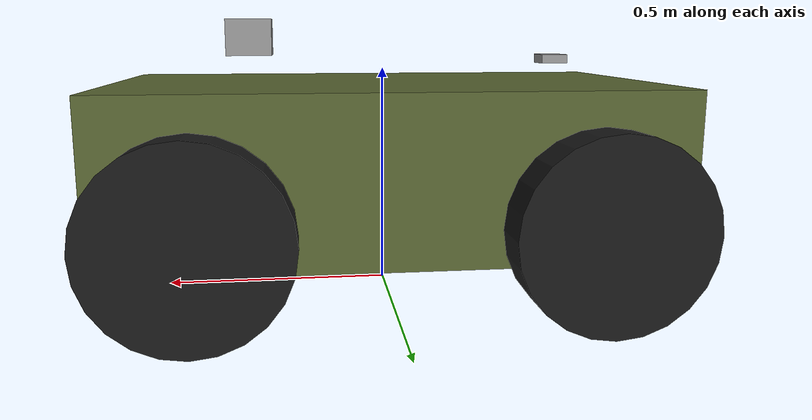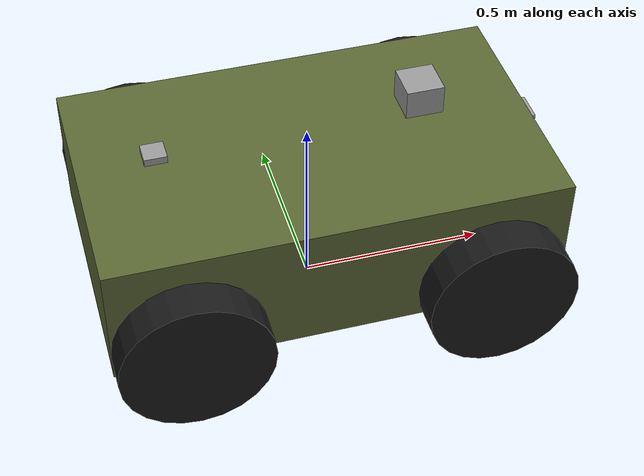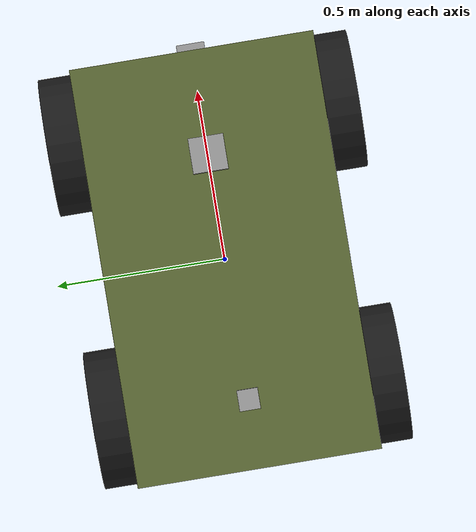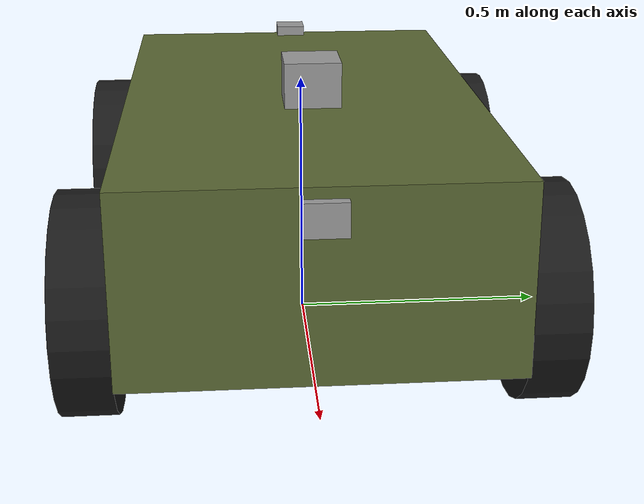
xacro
<?xml version="1.0"?>
<robot xmlns:xacro="http://www.ros.org/wiki/xacro" name="ugv">
  <!-- Differential 4-wheel UGV. Metres, kilograms. Frames follow REP-103 (x forward, z up). -->
  <xacro:arg name="prefix" default=""/>
  <xacro:arg name="use_ros2_control" default="false"/>
  <xacro:arg name="sim" default="false"/>
  <xacro:arg name="ns" default="v1"/>
  <xacro:arg name="controllers_yaml" default=""/>
  <xacro:property name="prefix" value="$(arg prefix)"/>

  <xacro:property name="body_l" value="1.20"/>
  <xacro:property name="body_w" value="0.70"/>
  <xacro:property name="body_h" value="0.35"/>
  <xacro:property name="body_m" value="60.0"/>
  <xacro:property name="wheel_r" value="0.20"/>
  <xacro:property name="wheel_w" value="0.10"/>
  <xacro:property name="wheel_m" value="4.0"/>
  <xacro:property name="wheel_x" value="0.40"/>
  <xacro:property name="wheel_y" value="${body_w/2 + wheel_w/2}"/>
  <xacro:property name="ground_clearance" value="0.12"/>

  <xacro:macro name="box_inertia" params="m x y z">
    <inertia ixx="${m*(y*y+z*z)/12}" iyy="${m*(x*x+z*z)/12}" izz="${m*(x*x+y*y)/12}" ixy="0" ixz="0" iyz="0"/>
  </xacro:macro>
  <xacro:macro name="cylinder_inertia" params="m r h">
    <inertia ixx="${m*(3*r*r+h*h)/12}" iyy="${m*(3*r*r+h*h)/12}" izz="${m*r*r/2}" ixy="0" ixz="0" iyz="0"/>
  </xacro:macro>

  <link name="${prefix}base_footprint"/>
  <joint name="${prefix}base_footprint_joint" type="fixed">
    <parent link="${prefix}base_footprint"/>
    <child link="${prefix}base_link"/>
    <origin xyz="0 0 ${ground_clearance + body_h/2}"/>
  </joint>

  <link name="${prefix}base_link">
    <visual>
      <geometry><box size="${body_l} ${body_w} ${body_h}"/></geometry>
      <material name="olive"><color rgba="0.35 0.40 0.20 1"/></material>
    </visual>
    <collision><geometry><box size="${body_l} ${body_w} ${body_h}"/></geometry></collision>
    <inertial><mass value="${body_m}"/><xacro:box_inertia m="${body_m}" x="${body_l}" y="${body_w}" z="${body_h}"/></inertial>
  </link>

  <xacro:macro name="wheel" params="name x y">
    <link name="${prefix}${name}_wheel">
      <visual>
        <origin rpy="${pi/2} 0 0"/>
        <geometry><cylinder radius="${wheel_r}" length="${wheel_w}"/></geometry>
        <material name="black"><color rgba="0.1 0.1 0.1 1"/></material>
      </visual>
      <collision>
        <origin rpy="${pi/2} 0 0"/>
        <geometry><cylinder radius="${wheel_r}" length="${wheel_w}"/></geometry>
      </collision>
      <inertial><mass value="${wheel_m}"/><xacro:cylinder_inertia m="${wheel_m}" r="${wheel_r}" h="${wheel_w}"/></inertial>
    </link>
    <joint name="${prefix}${name}_wheel_joint" type="continuous">
      <parent link="${prefix}base_link"/>
      <child link="${prefix}${name}_wheel"/>
      <origin xyz="${x} ${y} ${-(ground_clearance + body_h/2 - wheel_r)}"/>
      <axis xyz="0 1 0"/>
      <limit effort="40" velocity="30"/>
      <dynamics damping="0.1" friction="0.05"/>
    </joint>
  </xacro:macro>
  <xacro:wheel name="front_left"  x="${wheel_x}"  y="${wheel_y}"/>
  <xacro:wheel name="front_right" x="${wheel_x}"  y="${-wheel_y}"/>
  <xacro:wheel name="rear_left"   x="${-wheel_x}" y="${wheel_y}"/>
  <xacro:wheel name="rear_right"  x="${-wheel_x}" y="${-wheel_y}"/>

  <!-- Sensor mounts. Gazebo sensor plugins attach to these links in corridor_gz. -->
  <xacro:macro name="mount" params="name xyz rpy:='0 0 0' size:='0.08 0.08 0.06'">
    <link name="${prefix}${name}_link">
      <visual><geometry><box size="${size}"/></geometry><material name="grey"><color rgba="0.6 0.6 0.6 1"/></material></visual>
      <inertial><mass value="0.2"/><inertia ixx="1e-4" iyy="1e-4" izz="1e-4" ixy="0" ixz="0" iyz="0"/></inertial>
    </link>
    <joint name="${prefix}${name}_joint" type="fixed">
      <parent link="${prefix}base_link"/>
      <child link="${prefix}${name}_link"/>
      <origin xyz="${xyz}" rpy="${rpy}"/>
    </joint>
  </xacro:macro>
  <xacro:mount name="lidar"  xyz="0.30 0 ${body_h/2 + 0.10}" size="0.10 0.10 0.08"/>
  <xacro:mount name="camera" xyz="${body_l/2 - 0.02} 0 ${body_h/2 - 0.05}"/>
  <xacro:mount name="imu"    xyz="0 0 0" size="0.03 0.03 0.01"/>
  <xacro:mount name="gnss"   xyz="-0.40 0 ${body_h/2 + 0.05}" size="0.06 0.06 0.02"/>

  <xacro:if value="$(arg sim)">
    <xacro:include filename="$(find corridor_description)/urdf/ugv.gazebo.xacro"/>
    <xacro:ugv_gazebo prefix="${prefix}" ns="$(arg ns)"/>
  </xacro:if>

  <xacro:if value="$(arg use_ros2_control)">
    <ros2_control name="${prefix}ugv_system" type="system">
      <hardware><plugin>gz_ros2_control/GazeboSimSystem</plugin></hardware>
      <xacro:macro name="wheel_if" params="name">
        <joint name="${prefix}${name}_wheel_joint">
          <command_interface name="velocity"><param name="min">-30</param><param name="max">30</param></command_interface>
          <state_interface name="position"/>
          <state_interface name="velocity"/>
        </joint>
      </xacro:macro>
      <xacro:wheel_if name="front_left"/>
      <xacro:wheel_if name="front_right"/>
      <xacro:wheel_if name="rear_left"/>
      <xacro:wheel_if name="rear_right"/>
    </ros2_control>
  </xacro:if>
</robot>
